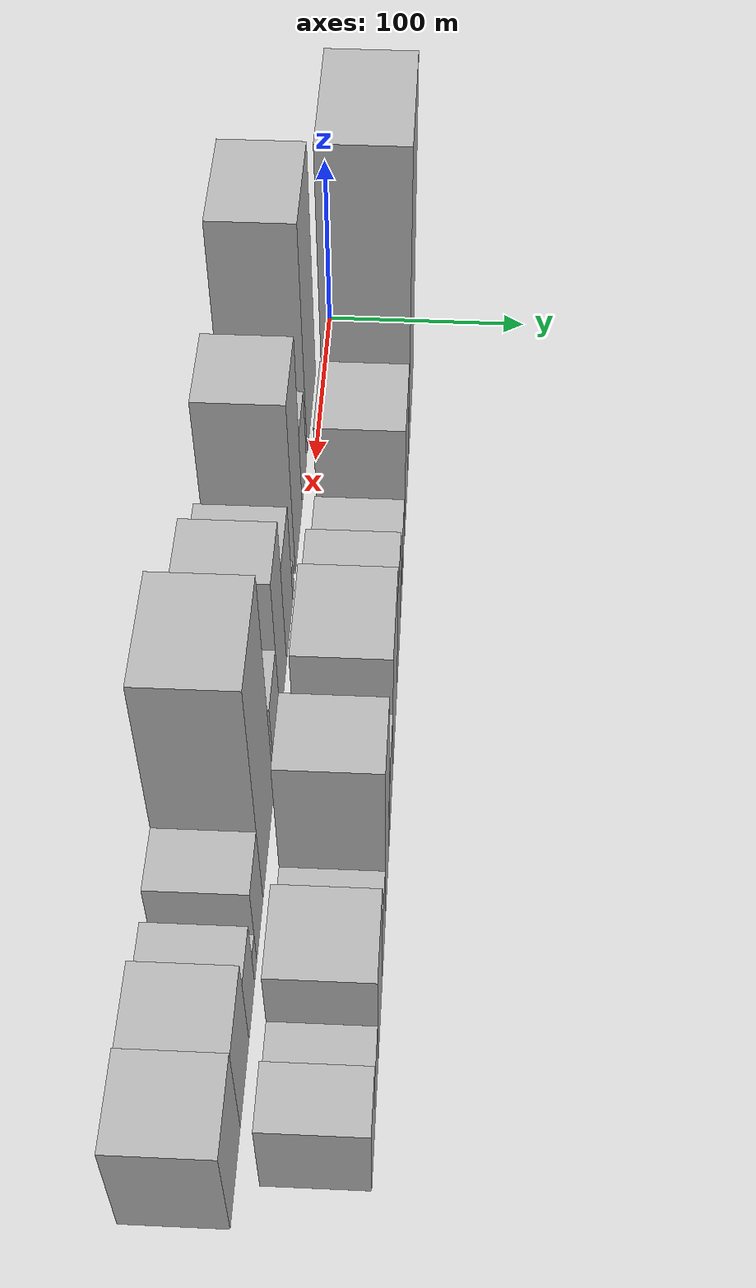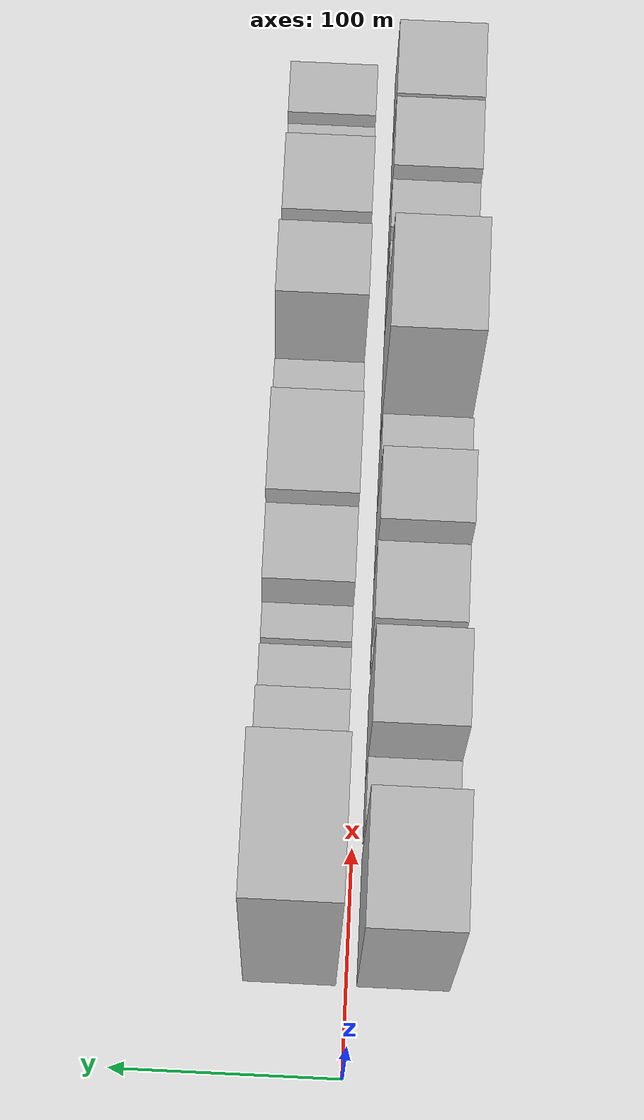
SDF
<sdf version="1.6">
 <world name="default">
  <scene>
   <sky><clouds><speed>12</speed></clouds></sky>
   <ambient>0.4 0.4 0.4 1</ambient>
   <background>0.7 0.7 0.7 1</background>
   <shadows>1</shadows>
  </scene>
  <gravity>0 0 -9.8066</gravity>
  <magnetic_field>6e-06 2.3e-05 -4.2e-05</magnetic_field>
  <physics default="0" name="default_physics" type="ode">
   <ode>
    <solver>
     <type>quick</type>
     <iters>10</iters>
     <sor>1.0</sor>
     <use_dynamic_moi_rescaling>0</use_dynamic_moi_rescaling>
    </solver>
    <constraints>
     <cfm>0</cfm>
     <erp>0.2</erp>
     <contact_max_correcting_vel>100</contact_max_correcting_vel>
     <contact_surface_layer>0.001</contact_surface_layer>
    </constraints>
   </ode>
   <max_step_size>0.004</max_step_size>
   <real_time_factor>1</real_time_factor>
   <real_time_update_rate>250</real_time_update_rate>
  </physics>
  <light name="sun" type="directional">
   <pose>0 0 10 0 0 0</pose>
   <diffuse>0.8 0.8 0.8 1</diffuse>
   <specular>0.2 0.2 0.2 1</specular>
   <attenuation>
    <range>1000</range>
    <constant>0.9</constant>
    <linear>0.01</linear>
    <quadratic>0.001</quadratic>
   </attenuation>
   <direction>-0.5 0.1 -0.9</direction>
  </light>
  <model name="building_1">
   <static>1</static>
   <pose>72.5850 24.5000 0 0.000000 0.000000 1.570796</pose>
   <link name="link">
    <pose>0 0 94.50 0 0 0</pose>
    <collision name="collision"><geometry><box><size>40.0000 65.1700 189.0000</size></box></geometry></collision>
    <visual name="visual">
     <cast_shadows>0</cast_shadows>
     <geometry><box><size>40.0000 65.1700 189.0000</size></box></geometry>
     <material>
      <script>
       <uri>model://HANNAS_wall/materials/scripts</uri>
       <uri>model://HANNAS_wall/materials/textures</uri>
       <name>vrc/HANNAS_wall</name>
      </script>
     </material>
    </visual>
   </link>
  </model>
  <model name="building_2">
   <static>1</static>
   <pose>131.0280 24.5000 0 0.000000 0.000000 1.570796</pose>
   <link name="link">
    <pose>0 0 37.50 0 0 0</pose>
    <collision name="collision"><geometry><box><size>40.0000 41.7160 75.0000</size></box></geometry></collision>
    <visual name="visual">
     <cast_shadows>0</cast_shadows>
     <geometry><box><size>40.0000 41.7160 75.0000</size></box></geometry>
     <material>
      <script>
       <uri>model://HANNAS_wall/materials/scripts</uri>
       <uri>model://HANNAS_wall/materials/textures</uri>
       <name>vrc/HANNAS_wall</name>
      </script>
     </material>
    </visual>
   </link>
  </model>
  <model name="building_3">
   <static>1</static>
   <pose>169.5437 24.5000 0 0.000000 0.000000 1.570796</pose>
   <link name="link">
    <pose>0 0 19.50 0 0 0</pose>
    <collision name="collision"><geometry><box><size>40.0000 21.3154 39.0000</size></box></geometry></collision>
    <visual name="visual">
     <cast_shadows>0</cast_shadows>
     <geometry><box><size>40.0000 21.3154 39.0000</size></box></geometry>
     <material>
      <script>
       <uri>model://HANNAS_wall/materials/scripts</uri>
       <uri>model://HANNAS_wall/materials/textures</uri>
       <name>vrc/HANNAS_wall</name>
      </script>
     </material>
    </visual>
   </link>
  </model>
  <model name="building_4">
   <static>1</static>
   <pose>193.3490 24.5000 0 0.000000 0.000000 1.570796</pose>
   <link name="link">
    <pose>0 0 15.00 0 0 0</pose>
    <collision name="collision"><geometry><box><size>40.0000 16.2951 30.0000</size></box></geometry></collision>
    <visual name="visual">
     <cast_shadows>0</cast_shadows>
     <geometry><box><size>40.0000 16.2951 30.0000</size></box></geometry>
     <material>
      <script>
       <uri>model://HANNAS_wall/materials/scripts</uri>
       <uri>model://HANNAS_wall/materials/textures</uri>
       <name>vrc/HANNAS_wall</name>
      </script>
     </material>
    </visual>
   </link>
  </model>
  <model name="building_5">
   <static>1</static>
   <pose>218.4872 24.5000 0 0.000000 0.000000 1.570796</pose>
   <link name="link">
    <pose>0 0 33.00 0 0 0</pose>
    <collision name="collision"><geometry><box><size>40.0000 33.9814 66.0000</size></box></geometry></collision>
    <visual name="visual">
     <cast_shadows>0</cast_shadows>
     <geometry><box><size>40.0000 33.9814 66.0000</size></box></geometry>
     <material>
      <script>
       <uri>model://HANNAS_wall/materials/scripts</uri>
       <uri>model://HANNAS_wall/materials/textures</uri>
       <name>vrc/HANNAS_wall</name>
      </script>
     </material>
    </visual>
   </link>
  </model>
  <model name="building_6">
   <static>1</static>
   <pose>258.4989 24.5000 0 0.000000 0.000000 1.570796</pose>
   <link name="link">
    <pose>0 0 42.00 0 0 0</pose>
    <collision name="collision"><geometry><box><size>40.0000 46.0420 84.0000</size></box></geometry></collision>
    <visual name="visual">
     <cast_shadows>0</cast_shadows>
     <geometry><box><size>40.0000 46.0420 84.0000</size></box></geometry>
     <material>
      <script>
       <uri>model://HANNAS_wall/materials/scripts</uri>
       <uri>model://HANNAS_wall/materials/textures</uri>
       <name>vrc/HANNAS_wall</name>
      </script>
     </material>
    </visual>
   </link>
  </model>
  <model name="building_7">
   <static>1</static>
   <pose>295.1892 24.5000 0 0.000000 0.000000 1.570796</pose>
   <link name="link">
    <pose>0 0 24.00 0 0 0</pose>
    <collision name="collision"><geometry><box><size>40.0000 27.3386 48.0000</size></box></geometry></collision>
    <visual name="visual">
     <cast_shadows>0</cast_shadows>
     <geometry><box><size>40.0000 27.3386 48.0000</size></box></geometry>
     <material>
      <script>
       <uri>model://HANNAS_wall/materials/scripts</uri>
       <uri>model://HANNAS_wall/materials/textures</uri>
       <name>vrc/HANNAS_wall</name>
      </script>
     </material>
    </visual>
   </link>
  </model>
  <model name="building_8">
   <static>1</static>
   <pose>312.5067 24.5000 0 0.000000 0.000000 1.570796</pose>
   <link name="link">
    <pose>0 0 7.50 0 0 0</pose>
    <collision name="collision"><geometry><box><size>40.0000 7.2965 15.0000</size></box></geometry></collision>
    <visual name="visual">
     <cast_shadows>0</cast_shadows>
     <geometry><box><size>40.0000 7.2965 15.0000</size></box></geometry>
     <material>
      <script>
       <uri>model://HANNAS_wall/materials/scripts</uri>
       <uri>model://HANNAS_wall/materials/textures</uri>
       <name>vrc/HANNAS_wall</name>
      </script>
     </material>
    </visual>
   </link>
  </model>
  <model name="building_9">
   <static>1</static>
   <pose>332.6536 24.5000 0 0.000000 0.000000 1.570796</pose>
   <link name="link">
    <pose>0 0 54.00 0 0 0</pose>
    <collision name="collision"><geometry><box><size>40.0000 32.9972 108.0000</size></box></geometry></collision>
    <visual name="visual">
     <cast_shadows>0</cast_shadows>
     <geometry><box><size>40.0000 32.9972 108.0000</size></box></geometry>
     <material>
      <script>
       <uri>model://HANNAS_wall/materials/scripts</uri>
       <uri>model://HANNAS_wall/materials/textures</uri>
       <name>vrc/HANNAS_wall</name>
      </script>
     </material>
    </visual>
   </link>
  </model>
  <model name="building_10">
   <static>1</static>
   <pose>360.5683 24.5000 0 0.000000 0.000000 1.570796</pose>
   <link name="link">
    <pose>0 0 21.00 0 0 0</pose>
    <collision name="collision"><geometry><box><size>40.0000 22.8323 42.0000</size></box></geometry></collision>
    <visual name="visual">
     <cast_shadows>0</cast_shadows>
     <geometry><box><size>40.0000 22.8323 42.0000</size></box></geometry>
     <material>
      <script>
       <uri>model://HANNAS_wall/materials/scripts</uri>
       <uri>model://HANNAS_wall/materials/textures</uri>
       <name>vrc/HANNAS_wall</name>
      </script>
     </material>
    </visual>
   </link>
  </model>
  <model name="building_11">
   <static>1</static>
   <pose>390.4581 24.5000 0 0.000000 0.000000 1.570796</pose>
   <link name="link">
    <pose>0 0 34.50 0 0 0</pose>
    <collision name="collision"><geometry><box><size>40.0000 36.9472 69.0000</size></box></geometry></collision>
    <visual name="visual">
     <cast_shadows>0</cast_shadows>
     <geometry><box><size>40.0000 36.9472 69.0000</size></box></geometry>
     <material>
      <script>
       <uri>model://HANNAS_wall/materials/scripts</uri>
       <uri>model://HANNAS_wall/materials/textures</uri>
       <name>vrc/HANNAS_wall</name>
      </script>
     </material>
    </visual>
   </link>
  </model>
  <model name="building_12">
   <static>1</static>
   <pose>419.2174 24.5000 0 0.000000 0.000000 1.570796</pose>
   <link name="link">
    <pose>0 0 18.00 0 0 0</pose>
    <collision name="collision"><geometry><box><size>40.0000 20.5715 36.0000</size></box></geometry></collision>
    <visual name="visual">
     <cast_shadows>0</cast_shadows>
     <geometry><box><size>40.0000 20.5715 36.0000</size></box></geometry>
     <material>
      <script>
       <uri>model://HANNAS_wall/materials/scripts</uri>
       <uri>model://HANNAS_wall/materials/textures</uri>
       <name>vrc/HANNAS_wall</name>
      </script>
     </material>
    </visual>
   </link>
  </model>
  <model name="building_13">
   <static>1</static>
   <pose>442.2810 24.5000 0 0.000000 0.000000 1.570796</pose>
   <link name="link">
    <pose>0 0 24.00 0 0 0</pose>
    <collision name="collision"><geometry><box><size>40.0000 25.5558 48.0000</size></box></geometry></collision>
    <visual name="visual">
     <cast_shadows>0</cast_shadows>
     <geometry><box><size>40.0000 25.5558 48.0000</size></box></geometry>
     <material>
      <script>
       <uri>model://HANNAS_wall/materials/scripts</uri>
       <uri>model://HANNAS_wall/materials/textures</uri>
       <name>vrc/HANNAS_wall</name>
      </script>
     </material>
    </visual>
   </link>
  </model>
  <model name="building_14">
   <static>1</static>
   <pose>68.1903 -24.5000 0 0.000000 0.000000 1.570796</pose>
   <link name="link">
    <pose>0 0 70.50 0 0 0</pose>
    <collision name="collision"><geometry><box><size>40.0000 56.3806 141.0000</size></box></geometry></collision>
    <visual name="visual">
     <cast_shadows>0</cast_shadows>
     <geometry><box><size>40.0000 56.3806 141.0000</size></box></geometry>
     <material>
      <script>
       <uri>model://HANNAS_wall/materials/scripts</uri>
       <uri>model://HANNAS_wall/materials/textures</uri>
       <name>vrc/HANNAS_wall</name>
      </script>
     </material>
    </visual>
   </link>
  </model>
  <model name="building_15">
   <static>1</static>
   <pose>116.2523 -24.5000 0 0.000000 0.000000 1.570796</pose>
   <link name="link">
    <pose>0 0 24.00 0 0 0</pose>
    <collision name="collision"><geometry><box><size>40.0000 27.7434 48.0000</size></box></geometry></collision>
    <visual name="visual">
     <cast_shadows>0</cast_shadows>
     <geometry><box><size>40.0000 27.7434 48.0000</size></box></geometry>
     <material>
      <script>
       <uri>model://HANNAS_wall/materials/scripts</uri>
       <uri>model://HANNAS_wall/materials/textures</uri>
       <name>vrc/HANNAS_wall</name>
      </script>
     </material>
    </visual>
   </link>
  </model>
  <model name="building_16">
   <static>1</static>
   <pose>150.7650 -24.5000 0 0.000000 0.000000 1.570796</pose>
   <link name="link">
    <pose>0 0 54.00 0 0 0</pose>
    <collision name="collision"><geometry><box><size>40.0000 41.2820 108.0000</size></box></geometry></collision>
    <visual name="visual">
     <cast_shadows>0</cast_shadows>
     <geometry><box><size>40.0000 41.2820 108.0000</size></box></geometry>
     <material>
      <script>
       <uri>model://HANNAS_wall/materials/scripts</uri>
       <uri>model://HANNAS_wall/materials/textures</uri>
       <name>vrc/HANNAS_wall</name>
      </script>
     </material>
    </visual>
   </link>
  </model>
  <model name="building_17">
   <static>1</static>
   <pose>183.2166 -24.5000 0 0.000000 0.000000 1.570796</pose>
   <link name="link">
    <pose>0 0 9.00 0 0 0</pose>
    <collision name="collision"><geometry><box><size>40.0000 7.6210 18.0000</size></box></geometry></collision>
    <visual name="visual">
     <cast_shadows>0</cast_shadows>
     <geometry><box><size>40.0000 7.6210 18.0000</size></box></geometry>
     <material>
      <script>
       <uri>model://HANNAS_wall/materials/scripts</uri>
       <uri>model://HANNAS_wall/materials/textures</uri>
       <name>vrc/HANNAS_wall</name>
      </script>
     </material>
    </visual>
   </link>
  </model>
  <model name="building_18">
   <static>1</static>
   <pose>204.4127 -24.5000 0 0.000000 0.000000 1.570796</pose>
   <link name="link">
    <pose>0 0 31.50 0 0 0</pose>
    <collision name="collision"><geometry><box><size>40.0000 34.7712 63.0000</size></box></geometry></collision>
    <visual name="visual">
     <cast_shadows>0</cast_shadows>
     <geometry><box><size>40.0000 34.7712 63.0000</size></box></geometry>
     <material>
      <script>
       <uri>model://HANNAS_wall/materials/scripts</uri>
       <uri>model://HANNAS_wall/materials/textures</uri>
       <name>vrc/HANNAS_wall</name>
      </script>
     </material>
    </visual>
   </link>
  </model>
  <model name="building_19">
   <static>1</static>
   <pose>237.9651 -24.5000 0 0.000000 0.000000 1.570796</pose>
   <link name="link">
    <pose>0 0 46.50 0 0 0</pose>
    <collision name="collision"><geometry><box><size>40.0000 32.3336 93.0000</size></box></geometry></collision>
    <visual name="visual">
     <cast_shadows>0</cast_shadows>
     <geometry><box><size>40.0000 32.3336 93.0000</size></box></geometry>
     <material>
      <script>
       <uri>model://HANNAS_wall/materials/scripts</uri>
       <uri>model://HANNAS_wall/materials/textures</uri>
       <name>vrc/HANNAS_wall</name>
      </script>
     </material>
    </visual>
   </link>
  </model>
  <model name="building_20">
   <static>1</static>
   <pose>269.1109 -24.5000 0 0.000000 0.000000 1.570796</pose>
   <link name="link">
    <pose>0 0 25.50 0 0 0</pose>
    <collision name="collision"><geometry><box><size>40.0000 29.9581 51.0000</size></box></geometry></collision>
    <visual name="visual">
     <cast_shadows>0</cast_shadows>
     <geometry><box><size>40.0000 29.9581 51.0000</size></box></geometry>
     <material>
      <script>
       <uri>model://HANNAS_wall/materials/scripts</uri>
       <uri>model://HANNAS_wall/materials/textures</uri>
       <name>vrc/HANNAS_wall</name>
      </script>
     </material>
    </visual>
   </link>
  </model>
  <model name="building_21">
   <static>1</static>
   <pose>314.4911 -24.5000 0 0.000000 0.000000 1.570796</pose>
   <link name="link">
    <pose>0 0 70.50 0 0 0</pose>
    <collision name="collision"><geometry><box><size>40.0000 50.8022 141.0000</size></box></geometry></collision>
    <visual name="visual">
     <cast_shadows>0</cast_shadows>
     <geometry><box><size>40.0000 50.8022 141.0000</size></box></geometry>
     <material>
      <script>
       <uri>model://HANNAS_wall/materials/scripts</uri>
       <uri>model://HANNAS_wall/materials/textures</uri>
       <name>vrc/HANNAS_wall</name>
      </script>
     </material>
    </visual>
   </link>
  </model>
  <model name="building_22">
   <static>1</static>
   <pose>353.3153 -24.5000 0 0.000000 0.000000 1.570796</pose>
   <link name="link">
    <pose>0 0 25.50 0 0 0</pose>
    <collision name="collision"><geometry><box><size>40.0000 26.8462 51.0000</size></box></geometry></collision>
    <visual name="visual">
     <cast_shadows>0</cast_shadows>
     <geometry><box><size>40.0000 26.8462 51.0000</size></box></geometry>
     <material>
      <script>
       <uri>model://HANNAS_wall/materials/scripts</uri>
       <uri>model://HANNAS_wall/materials/textures</uri>
       <name>vrc/HANNAS_wall</name>
      </script>
     </material>
    </visual>
   </link>
  </model>
  <model name="building_23">
   <static>1</static>
   <pose>371.5127 -24.5000 0 0.000000 0.000000 1.570796</pose>
   <link name="link">
    <pose>0 0 10.50 0 0 0</pose>
    <collision name="collision"><geometry><box><size>40.0000 9.5486 21.0000</size></box></geometry></collision>
    <visual name="visual">
     <cast_shadows>0</cast_shadows>
     <geometry><box><size>40.0000 9.5486 21.0000</size></box></geometry>
     <material>
      <script>
       <uri>model://HANNAS_wall/materials/scripts</uri>
       <uri>model://HANNAS_wall/materials/textures</uri>
       <name>vrc/HANNAS_wall</name>
      </script>
     </material>
    </visual>
   </link>
  </model>
  <model name="building_24">
   <static>1</static>
   <pose>388.0418 -24.5000 0 0.000000 0.000000 1.570796</pose>
   <link name="link">
    <pose>0 0 22.50 0 0 0</pose>
    <collision name="collision"><geometry><box><size>40.0000 23.5097 45.0000</size></box></geometry></collision>
    <visual name="visual">
     <cast_shadows>0</cast_shadows>
     <geometry><box><size>40.0000 23.5097 45.0000</size></box></geometry>
     <material>
      <script>
       <uri>model://HANNAS_wall/materials/scripts</uri>
       <uri>model://HANNAS_wall/materials/textures</uri>
       <name>vrc/HANNAS_wall</name>
      </script>
     </material>
    </visual>
   </link>
  </model>
  <model name="building_25">
   <static>1</static>
   <pose>416.8328 -24.5000 0 0.000000 0.000000 1.570796</pose>
   <link name="link">
    <pose>0 0 30.00 0 0 0</pose>
    <collision name="collision"><geometry><box><size>40.0000 34.0722 60.0000</size></box></geometry></collision>
    <visual name="visual">
     <cast_shadows>0</cast_shadows>
     <geometry><box><size>40.0000 34.0722 60.0000</size></box></geometry>
     <material>
      <script>
       <uri>model://HANNAS_wall/materials/scripts</uri>
       <uri>model://HANNAS_wall/materials/textures</uri>
       <name>vrc/HANNAS_wall</name>
      </script>
     </material>
    </visual>
   </link>
  </model>
  <model name="building_26">
   <static>1</static>
   <pose>452.4077 -24.5000 0 0.000000 0.000000 1.570796</pose>
   <link name="link">
    <pose>0 0 31.50 0 0 0</pose>
    <collision name="collision"><geometry><box><size>40.0000 37.0777 63.0000</size></box></geometry></collision>
    <visual name="visual">
     <cast_shadows>0</cast_shadows>
     <geometry><box><size>40.0000 37.0777 63.0000</size></box></geometry>
     <material>
      <script>
       <uri>model://HANNAS_wall/materials/scripts</uri>
       <uri>model://HANNAS_wall/materials/textures</uri>
       <name>vrc/HANNAS_wall</name>
      </script>
     </material>
    </visual>
   </link>
  </model>
 </world>
</sdf>
